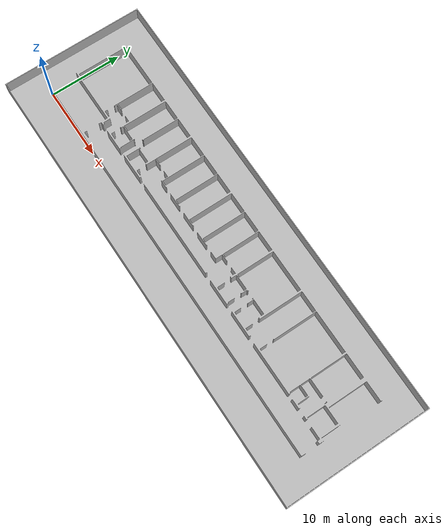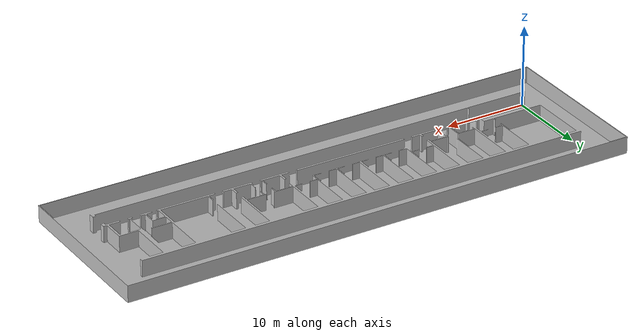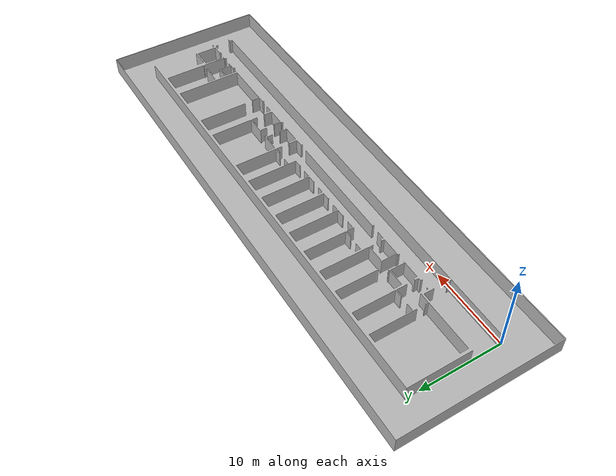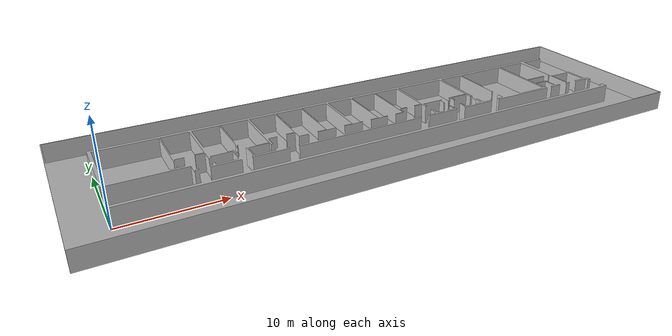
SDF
<?xml version="1.0" ?>
<sdf version="1.4">
  <world name="default">
    <!-- Initial Camera Position -->
    <gui>
      <camera name="camera_default">
        <pose>
          -4.0 2.0 8.0 0.0 0.7 0.0
        </pose>
      </camera>
    </gui>
    <!-- A global light source -->
    <include>
      <uri>model://sun</uri>
    </include>
    <!-- Own physics settings to speed up simulation -->
    <physics type='ode'>
      <max_step_size>0.001</max_step_size>
      <real_time_update_rate>1000</real_time_update_rate>
      <gravity>0 0 -9.8</gravity>
    </physics>
    <include>
      <uri>model://distributed_systems_department</uri>
    </include>
  </world>
</sdf>

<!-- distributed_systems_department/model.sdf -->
<sdf version="1.4">
  <model name="distributed_systems_department">
    <static>true</static>
    <link name="link">
      <pose>0 0 0 0 0 0</pose>
      <collision name="coll">
        <geometry>
          <mesh>
            <uri>model://distributed_systems_department/meshes/floorplan.stl</uri>
            <scale>0.0254 0.0254 0.0254</scale>
          </mesh>
        </geometry>
        <surface>
          <friction>
            <ode>
              <mu>100</mu>
              <mu2>50</mu2>
            </ode>
          </friction>
        </surface>
      </collision>
      <visual name="visual">
        <geometry>
          <mesh>
            <uri>model://distributed_systems_department/meshes/floorplan.stl</uri>
            <scale>0.0254 0.0254 0.0254</scale>
          </mesh>
        </geometry>
      </visual>
    </link>
  </model>
</sdf>
